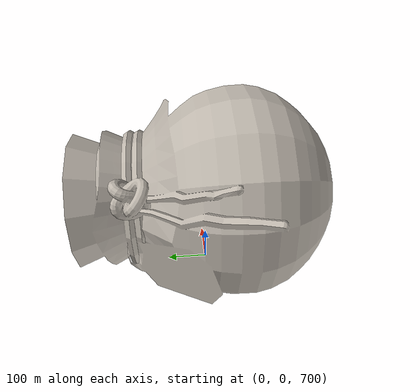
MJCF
<mujoco model="411652ce228c4689afc013a702f4e705">
  <default>
    <default class="visual">
      <geom group="2" type="mesh" contype="0" conaffinity="0"/>
    </default>
    <default class="collision">
      <geom group="3" type="mesh"/>
    </default>
  </default>
  <asset>
    <texture type="2d" name="material_0" file="material_0.png"/>
    <material name="material_0" texture="material_0" specular="0.4000000000000001" shininess="0.001"/>
    <mesh file="411652ce228c4689afc013a702f4e705.obj"/>
    <mesh file="411652ce228c4689afc013a702f4e705_collision_0.obj"/>
    <mesh file="411652ce228c4689afc013a702f4e705_collision_1.obj"/>
    <mesh file="411652ce228c4689afc013a702f4e705_collision_2.obj"/>
    <mesh file="411652ce228c4689afc013a702f4e705_collision_3.obj"/>
    <mesh file="411652ce228c4689afc013a702f4e705_collision_4.obj"/>
    <mesh file="411652ce228c4689afc013a702f4e705_collision_5.obj"/>
    <mesh file="411652ce228c4689afc013a702f4e705_collision_6.obj"/>
    <mesh file="411652ce228c4689afc013a702f4e705_collision_7.obj"/>
    <mesh file="411652ce228c4689afc013a702f4e705_collision_8.obj"/>
    <mesh file="411652ce228c4689afc013a702f4e705_collision_9.obj"/>
    <mesh file="411652ce228c4689afc013a702f4e705_collision_10.obj"/>
    <mesh file="411652ce228c4689afc013a702f4e705_collision_11.obj"/>
    <mesh file="411652ce228c4689afc013a702f4e705_collision_12.obj"/>
    <mesh file="411652ce228c4689afc013a702f4e705_collision_13.obj"/>
    <mesh file="411652ce228c4689afc013a702f4e705_collision_14.obj"/>
    <mesh file="411652ce228c4689afc013a702f4e705_collision_15.obj"/>
    <mesh file="411652ce228c4689afc013a702f4e705_collision_16.obj"/>
    <mesh file="411652ce228c4689afc013a702f4e705_collision_17.obj"/>
    <mesh file="411652ce228c4689afc013a702f4e705_collision_18.obj"/>
    <mesh file="411652ce228c4689afc013a702f4e705_collision_19.obj"/>
    <mesh file="411652ce228c4689afc013a702f4e705_collision_20.obj"/>
    <mesh file="411652ce228c4689afc013a702f4e705_collision_21.obj"/>
    <mesh file="411652ce228c4689afc013a702f4e705_collision_22.obj"/>
    <mesh file="411652ce228c4689afc013a702f4e705_collision_23.obj"/>
    <mesh file="411652ce228c4689afc013a702f4e705_collision_24.obj"/>
    <mesh file="411652ce228c4689afc013a702f4e705_collision_25.obj"/>
    <mesh file="411652ce228c4689afc013a702f4e705_collision_26.obj"/>
    <mesh file="411652ce228c4689afc013a702f4e705_collision_27.obj"/>
    <mesh file="411652ce228c4689afc013a702f4e705_collision_28.obj"/>
    <mesh file="411652ce228c4689afc013a702f4e705_collision_29.obj"/>
    <mesh file="411652ce228c4689afc013a702f4e705_collision_30.obj"/>
    <mesh file="411652ce228c4689afc013a702f4e705_collision_31.obj"/>
    <mesh file="411652ce228c4689afc013a702f4e705_collision_32.obj"/>
    <mesh file="411652ce228c4689afc013a702f4e705_collision_33.obj"/>
    <mesh file="411652ce228c4689afc013a702f4e705_collision_34.obj"/>
    <mesh file="411652ce228c4689afc013a702f4e705_collision_35.obj"/>
    <mesh file="411652ce228c4689afc013a702f4e705_collision_36.obj"/>
    <mesh file="411652ce228c4689afc013a702f4e705_collision_37.obj"/>
    <mesh file="411652ce228c4689afc013a702f4e705_collision_38.obj"/>
    <mesh file="411652ce228c4689afc013a702f4e705_collision_39.obj"/>
    <mesh file="411652ce228c4689afc013a702f4e705_collision_40.obj"/>
    <mesh file="411652ce228c4689afc013a702f4e705_collision_41.obj"/>
    <mesh file="411652ce228c4689afc013a702f4e705_collision_42.obj"/>
    <mesh file="411652ce228c4689afc013a702f4e705_collision_43.obj"/>
    <mesh file="411652ce228c4689afc013a702f4e705_collision_44.obj"/>
    <mesh file="411652ce228c4689afc013a702f4e705_collision_45.obj"/>
    <mesh file="411652ce228c4689afc013a702f4e705_collision_46.obj"/>
    <mesh file="411652ce228c4689afc013a702f4e705_collision_47.obj"/>
    <mesh file="411652ce228c4689afc013a702f4e705_collision_48.obj"/>
    <mesh file="411652ce228c4689afc013a702f4e705_collision_49.obj"/>
    <mesh file="411652ce228c4689afc013a702f4e705_collision_50.obj"/>
    <mesh file="411652ce228c4689afc013a702f4e705_collision_51.obj"/>
    <mesh file="411652ce228c4689afc013a702f4e705_collision_52.obj"/>
    <mesh file="411652ce228c4689afc013a702f4e705_collision_53.obj"/>
    <mesh file="411652ce228c4689afc013a702f4e705_collision_54.obj"/>
    <mesh file="411652ce228c4689afc013a702f4e705_collision_55.obj"/>
    <mesh file="411652ce228c4689afc013a702f4e705_collision_56.obj"/>
    <mesh file="411652ce228c4689afc013a702f4e705_collision_57.obj"/>
    <mesh file="411652ce228c4689afc013a702f4e705_collision_58.obj"/>
    <mesh file="411652ce228c4689afc013a702f4e705_collision_59.obj"/>
    <mesh file="411652ce228c4689afc013a702f4e705_collision_60.obj"/>
    <mesh file="411652ce228c4689afc013a702f4e705_collision_61.obj"/>
    <mesh file="411652ce228c4689afc013a702f4e705_collision_62.obj"/>
    <mesh file="411652ce228c4689afc013a702f4e705_collision_63.obj"/>
    <mesh file="411652ce228c4689afc013a702f4e705_collision_64.obj"/>
    <mesh file="411652ce228c4689afc013a702f4e705_collision_65.obj"/>
    <mesh file="411652ce228c4689afc013a702f4e705_collision_66.obj"/>
    <mesh file="411652ce228c4689afc013a702f4e705_collision_67.obj"/>
    <mesh file="411652ce228c4689afc013a702f4e705_collision_68.obj"/>
    <mesh file="411652ce228c4689afc013a702f4e705_collision_69.obj"/>
    <mesh file="411652ce228c4689afc013a702f4e705_collision_70.obj"/>
    <mesh file="411652ce228c4689afc013a702f4e705_collision_71.obj"/>
  </asset>
  <worldbody>
    <body name="411652ce228c4689afc013a702f4e705">
      <freejoint/>
      <geom material="material_0" mesh="411652ce228c4689afc013a702f4e705" class="visual"/>
      <geom mesh="411652ce228c4689afc013a702f4e705_collision_0" rgba="0.9825109638939695 0.4437262523263156 0.5095710338445482 1" class="collision"/>
      <geom mesh="411652ce228c4689afc013a702f4e705_collision_1" rgba="0.32517845691228087 0.8415154866867399 0.7559627928725715 1" class="collision"/>
      <geom mesh="411652ce228c4689afc013a702f4e705_collision_2" rgba="0.3465756008756459 0.966499780341484 0.19651836667407063 1" class="collision"/>
      <geom mesh="411652ce228c4689afc013a702f4e705_collision_3" rgba="0.1577798669555659 0.8165317456195013 0.243560170287363 1" class="collision"/>
      <geom mesh="411652ce228c4689afc013a702f4e705_collision_4" rgba="0.7913589365284946 0.9482623162061 0.2598899673270373 1" class="collision"/>
      <geom mesh="411652ce228c4689afc013a702f4e705_collision_5" rgba="0.9001675697203508 0.020526341601597053 0.7486398497059514 1" class="collision"/>
      <geom mesh="411652ce228c4689afc013a702f4e705_collision_6" rgba="0.7165650667091471 0.9506733956686765 0.24574454849898797 1" class="collision"/>
      <geom mesh="411652ce228c4689afc013a702f4e705_collision_7" rgba="0.7790028543019613 0.3108784365424444 0.7580440932624578 1" class="collision"/>
      <geom mesh="411652ce228c4689afc013a702f4e705_collision_8" rgba="0.9268865425186464 0.3939437352059648 0.009013321279723319 1" class="collision"/>
      <geom mesh="411652ce228c4689afc013a702f4e705_collision_9" rgba="0.7399203357630658 0.04482099707513054 0.902889755663747 1" class="collision"/>
      <geom mesh="411652ce228c4689afc013a702f4e705_collision_10" rgba="0.5829155159687336 0.5058768838925465 0.14080888479551368 1" class="collision"/>
      <geom mesh="411652ce228c4689afc013a702f4e705_collision_11" rgba="0.8762706971652314 0.9968055550004109 0.12278921821237188 1" class="collision"/>
      <geom mesh="411652ce228c4689afc013a702f4e705_collision_12" rgba="0.7698286536290269 0.8608532836159237 0.5202274650415674 1" class="collision"/>
      <geom mesh="411652ce228c4689afc013a702f4e705_collision_13" rgba="0.5716566329679507 0.660900808639729 0.02078235932090422 1" class="collision"/>
      <geom mesh="411652ce228c4689afc013a702f4e705_collision_14" rgba="0.841786696782943 0.5320169245257128 0.19373406231426837 1" class="collision"/>
      <geom mesh="411652ce228c4689afc013a702f4e705_collision_15" rgba="0.5404433757094105 0.8099995161526349 0.864443043559543 1" class="collision"/>
      <geom mesh="411652ce228c4689afc013a702f4e705_collision_16" rgba="0.30622788755134156 0.7178302021849694 0.0010870764573435165 1" class="collision"/>
      <geom mesh="411652ce228c4689afc013a702f4e705_collision_17" rgba="0.9118315943023035 0.2989292499429579 0.6109156445571843 1" class="collision"/>
      <geom mesh="411652ce228c4689afc013a702f4e705_collision_18" rgba="0.06412813068883205 0.3688992263614328 0.06224407347221761 1" class="collision"/>
      <geom mesh="411652ce228c4689afc013a702f4e705_collision_19" rgba="0.6323717890796078 0.3601014018034192 0.656790991983237 1" class="collision"/>
      <geom mesh="411652ce228c4689afc013a702f4e705_collision_20" rgba="0.1372587814231485 0.3243540809579618 0.8961480189178497 1" class="collision"/>
      <geom mesh="411652ce228c4689afc013a702f4e705_collision_21" rgba="0.9221105580891356 0.5085096350635773 0.5438213694820317 1" class="collision"/>
      <geom mesh="411652ce228c4689afc013a702f4e705_collision_22" rgba="0.05203555204996302 0.018191144945101212 0.39983594411698786 1" class="collision"/>
      <geom mesh="411652ce228c4689afc013a702f4e705_collision_23" rgba="0.25840634662971074 0.5061187238703617 0.7545633787401983 1" class="collision"/>
      <geom mesh="411652ce228c4689afc013a702f4e705_collision_24" rgba="0.10962068207735243 0.24797919092691723 0.3753308276049767 1" class="collision"/>
      <geom mesh="411652ce228c4689afc013a702f4e705_collision_25" rgba="0.37568427285072725 0.1797170594413312 0.80109362011607 1" class="collision"/>
      <geom mesh="411652ce228c4689afc013a702f4e705_collision_26" rgba="0.5408874960288718 0.09098981492287228 0.9778374780455108 1" class="collision"/>
      <geom mesh="411652ce228c4689afc013a702f4e705_collision_27" rgba="0.17383594585884654 0.7913110820537065 0.15886779711977672 1" class="collision"/>
      <geom mesh="411652ce228c4689afc013a702f4e705_collision_28" rgba="0.2291993783652435 0.18873907928218026 0.6357946506894341 1" class="collision"/>
      <geom mesh="411652ce228c4689afc013a702f4e705_collision_29" rgba="0.9631628188004603 0.05442730778074767 0.6352366214890954 1" class="collision"/>
      <geom mesh="411652ce228c4689afc013a702f4e705_collision_30" rgba="0.07114637539921775 0.6195595601655172 0.05904804726300894 1" class="collision"/>
      <geom mesh="411652ce228c4689afc013a702f4e705_collision_31" rgba="0.3972963921821586 0.9454322513954367 0.7094123188132737 1" class="collision"/>
      <geom mesh="411652ce228c4689afc013a702f4e705_collision_32" rgba="0.9620466654736172 0.6109380394391979 0.6310124192744799 1" class="collision"/>
      <geom mesh="411652ce228c4689afc013a702f4e705_collision_33" rgba="0.19417340886253298 0.41018252647098696 0.01509487605942661 1" class="collision"/>
      <geom mesh="411652ce228c4689afc013a702f4e705_collision_34" rgba="0.13528840970955147 0.2137082851872636 0.17051044655218073 1" class="collision"/>
      <geom mesh="411652ce228c4689afc013a702f4e705_collision_35" rgba="0.2651812318725155 0.7495399488288035 0.6673145022568135 1" class="collision"/>
      <geom mesh="411652ce228c4689afc013a702f4e705_collision_36" rgba="0.968362471861965 0.2630673087969485 0.7485298286523302 1" class="collision"/>
      <geom mesh="411652ce228c4689afc013a702f4e705_collision_37" rgba="0.7590129435685037 0.908415385841978 0.35094699490305803 1" class="collision"/>
      <geom mesh="411652ce228c4689afc013a702f4e705_collision_38" rgba="0.06546662856993934 0.9239482036753416 0.29533181873215875 1" class="collision"/>
      <geom mesh="411652ce228c4689afc013a702f4e705_collision_39" rgba="0.21021521258397968 0.03164507864987287 0.9863780997713673 1" class="collision"/>
      <geom mesh="411652ce228c4689afc013a702f4e705_collision_40" rgba="0.003935586710577699 0.1866828973668141 0.5466957804014367 1" class="collision"/>
      <geom mesh="411652ce228c4689afc013a702f4e705_collision_41" rgba="0.10487437415685763 0.6663681998609727 0.3487334452396693 1" class="collision"/>
      <geom mesh="411652ce228c4689afc013a702f4e705_collision_42" rgba="0.6471569970946717 0.9977038797962917 0.7371072018647545 1" class="collision"/>
      <geom mesh="411652ce228c4689afc013a702f4e705_collision_43" rgba="0.006004988155304258 0.46332518954272195 0.2769577915944329 1" class="collision"/>
      <geom mesh="411652ce228c4689afc013a702f4e705_collision_44" rgba="0.3843081215929969 0.6947295416227267 0.2598013195551323 1" class="collision"/>
      <geom mesh="411652ce228c4689afc013a702f4e705_collision_45" rgba="0.39495463631080874 0.10922098167045835 0.0263465931982807 1" class="collision"/>
      <geom mesh="411652ce228c4689afc013a702f4e705_collision_46" rgba="0.5195448803665396 0.8085148822248266 0.34582130784853304 1" class="collision"/>
      <geom mesh="411652ce228c4689afc013a702f4e705_collision_47" rgba="0.17452090949676913 0.2632169434736997 0.940564002512203 1" class="collision"/>
      <geom mesh="411652ce228c4689afc013a702f4e705_collision_48" rgba="0.7598847106132477 0.9199808846216767 0.1376719041797544 1" class="collision"/>
      <geom mesh="411652ce228c4689afc013a702f4e705_collision_49" rgba="0.9400721801346039 0.524093539962088 0.1521511617525978 1" class="collision"/>
      <geom mesh="411652ce228c4689afc013a702f4e705_collision_50" rgba="0.5731828367876614 0.6875779962075951 0.299113368061243 1" class="collision"/>
      <geom mesh="411652ce228c4689afc013a702f4e705_collision_51" rgba="0.11455151923665563 0.016796315589560407 0.0534275810939413 1" class="collision"/>
      <geom mesh="411652ce228c4689afc013a702f4e705_collision_52" rgba="0.12522857723463987 0.6563212545025747 0.8643656723239154 1" class="collision"/>
      <geom mesh="411652ce228c4689afc013a702f4e705_collision_53" rgba="0.9746123253269069 0.20136637931934587 0.9739102497409775 1" class="collision"/>
      <geom mesh="411652ce228c4689afc013a702f4e705_collision_54" rgba="0.16771515925367553 0.40430336928781063 0.9401780599760893 1" class="collision"/>
      <geom mesh="411652ce228c4689afc013a702f4e705_collision_55" rgba="0.03340567547688489 0.917145384523102 0.2254751121368791 1" class="collision"/>
      <geom mesh="411652ce228c4689afc013a702f4e705_collision_56" rgba="0.38490118765451964 0.9354073136928897 0.15872262747469645 1" class="collision"/>
      <geom mesh="411652ce228c4689afc013a702f4e705_collision_57" rgba="0.3528597396103583 0.3472701018552671 0.9645126582757154 1" class="collision"/>
      <geom mesh="411652ce228c4689afc013a702f4e705_collision_58" rgba="0.9039066616866729 0.5238909926172897 0.931614613565033 1" class="collision"/>
      <geom mesh="411652ce228c4689afc013a702f4e705_collision_59" rgba="0.22765432390172646 0.23101989464743655 0.47652308689537604 1" class="collision"/>
      <geom mesh="411652ce228c4689afc013a702f4e705_collision_60" rgba="0.6629624221369712 0.6180149429834854 0.8668396027487749 1" class="collision"/>
      <geom mesh="411652ce228c4689afc013a702f4e705_collision_61" rgba="0.8502793354384787 0.1947726150121779 0.7429460049381802 1" class="collision"/>
      <geom mesh="411652ce228c4689afc013a702f4e705_collision_62" rgba="0.8506586060390744 0.8089045778340945 0.9147488425752621 1" class="collision"/>
      <geom mesh="411652ce228c4689afc013a702f4e705_collision_63" rgba="0.9408277288809375 0.40062825410565894 0.32712197616298755 1" class="collision"/>
      <geom mesh="411652ce228c4689afc013a702f4e705_collision_64" rgba="0.5052470130326445 0.7284842346214915 0.012985817379397191 1" class="collision"/>
      <geom mesh="411652ce228c4689afc013a702f4e705_collision_65" rgba="0.9302042545271102 0.7587223886844208 0.6833998728514545 1" class="collision"/>
      <geom mesh="411652ce228c4689afc013a702f4e705_collision_66" rgba="0.8736058636334743 0.056978063068952034 0.8264902009210707 1" class="collision"/>
      <geom mesh="411652ce228c4689afc013a702f4e705_collision_67" rgba="0.6072570203313156 0.3314728269744385 0.04593228241088898 1" class="collision"/>
      <geom mesh="411652ce228c4689afc013a702f4e705_collision_68" rgba="0.45464165647452115 0.11647923282978645 0.42279976237133887 1" class="collision"/>
      <geom mesh="411652ce228c4689afc013a702f4e705_collision_69" rgba="0.09919331725598868 0.8516895094688848 0.6659615051627145 1" class="collision"/>
      <geom mesh="411652ce228c4689afc013a702f4e705_collision_70" rgba="0.580305563269923 0.2844901482688523 0.08114236066265224 1" class="collision"/>
      <geom mesh="411652ce228c4689afc013a702f4e705_collision_71" rgba="0.45642304496767616 0.5445102119760034 0.13460450885614117 1" class="collision"/>
    </body>
  </worldbody>
</mujoco>
